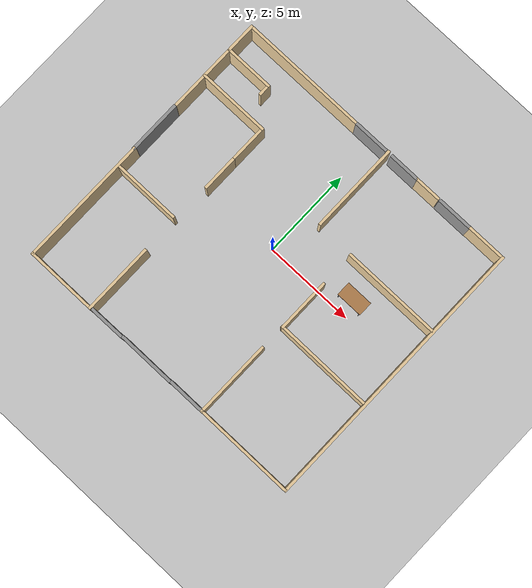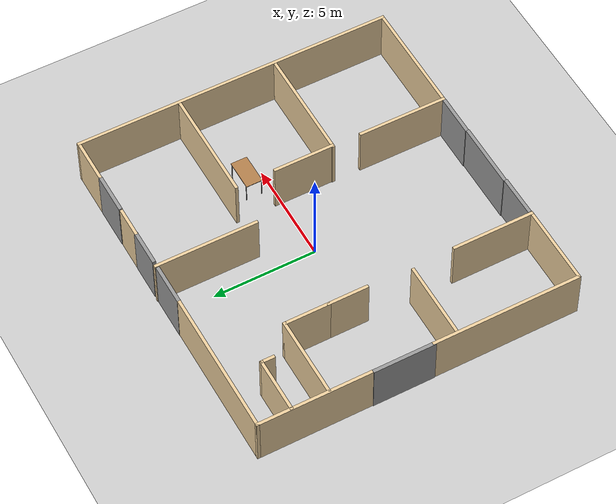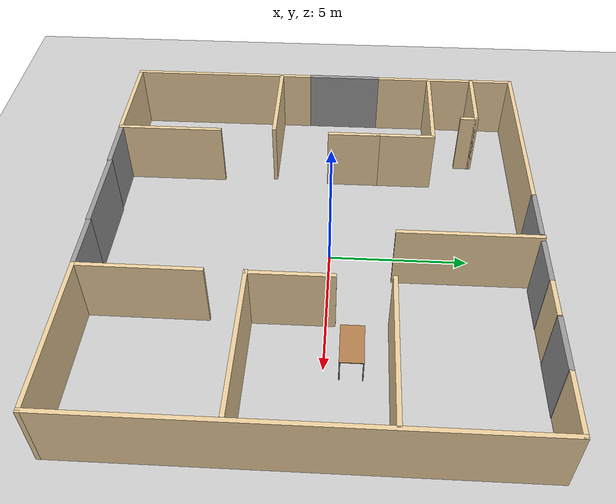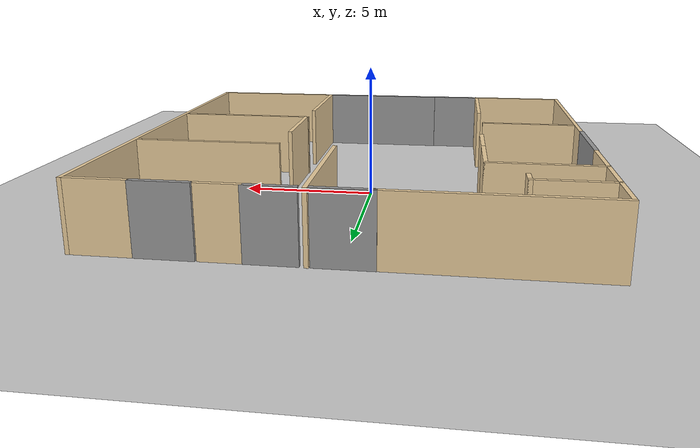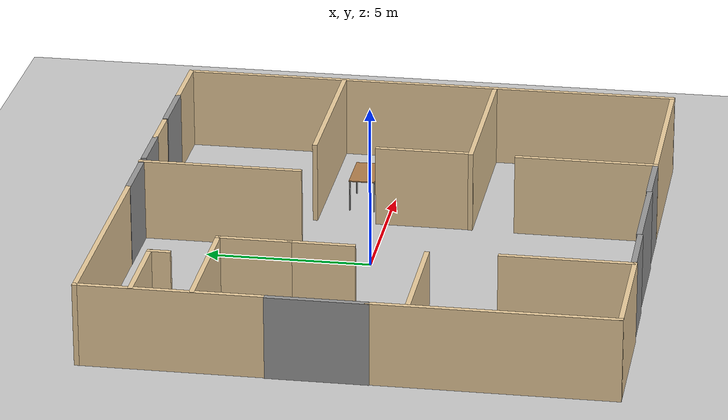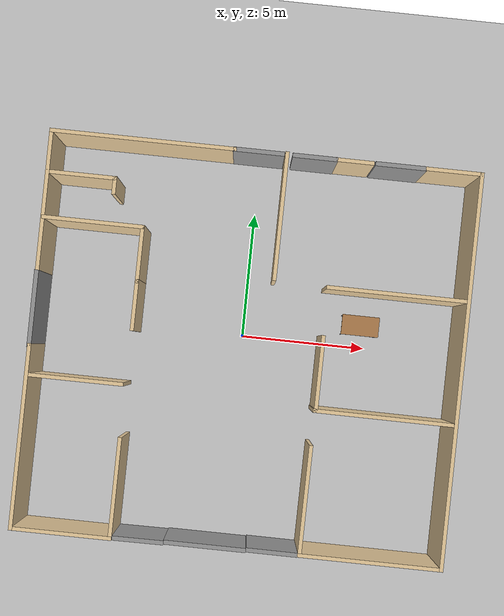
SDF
<sdf version="1.6">
 <world name="default">
  <model name="ground_plane">
   <static>1</static>
   <link name="link">
    <collision name="collision">
     <geometry><plane><normal>0 0 1</normal><size>100 100</size></plane></geometry>
     <surface><friction><ode><mu>100</mu><mu2>50</mu2></ode></friction></surface>
    </collision>
    <visual name="visual">
     <cast_shadows>0</cast_shadows>
     <geometry><plane><normal>0 0 1</normal><size>100 100</size></plane></geometry>
     <material>
      <script><uri>file://media/materials/scripts/gazebo.material</uri><name>Gazebo/Grey</name></script>
     </material>
    </visual>
   </link>
  </model>
  <model name="Building">
   <pose>0.22723 -0.57657 0 0 -0 0</pose>
   <link name="Door_1">
    <collision name="Door_1_Collision">
     <geometry><box><size>2 0.17 2.5</size></box></geometry>
     <pose>0 0 1.25 0 -0 0</pose>
    </collision>
    <visual name="Door_1_Visual">
     <pose>0 0 1.25 0 -0 0</pose>
     <geometry><box><size>2 0.17 2.5</size></box></geometry>
     <material>
      <script><uri>file://media/materials/scripts/gazebo.material</uri><name>Gazebo/Grey</name></script>
     </material>
    </visual>
    <pose>1.77302 -7.63321 0 0 -0 3.1393</pose>
   </link>
   <link name="Door_2">
    <collision name="Door_2_Collision">
     <geometry><box><size>2 0.17 2.5</size></box></geometry>
     <pose>0 0 1.25 0 -0 0</pose>
    </collision>
    <visual name="Door_2_Visual">
     <pose>0 0 1.25 0 -0 0</pose>
     <geometry><box><size>2 0.17 2.5</size></box></geometry>
     <material>
      <script><uri>file://media/materials/scripts/gazebo.material</uri><name>Gazebo/Grey</name></script>
     </material>
    </visual>
    <pose>-3.41797 -7.702 0 0 -0 -3.13381</pose>
   </link>
   <link name="Door_3">
    <collision name="Door_3_Collision">
     <geometry><box><size>1.75 0.17 2.5</size></box></geometry>
     <pose>0 0 1.25 0 -0 0</pose>
    </collision>
    <visual name="Door_3_Visual">
     <pose>0 0 1.25 0 -0 0</pose>
     <geometry><box><size>1.75 0.17 2.5</size></box></geometry>
     <material>
      <script><uri>file://media/materials/scripts/gazebo.material</uri><name>Gazebo/Grey</name></script>
     </material>
    </visual>
    <pose>1.87994 7.70603 0 0 -0 0</pose>
   </link>
   <link name="Wall_12">
    <collision name="Wall_12_Collision">
     <geometry><box><size>7.25 0.15 2.5</size></box></geometry>
     <pose>0 0 1.25 0 -0 0</pose>
    </collision>
    <visual name="Wall_12_Visual">
     <pose>0 0 1.25 0 -0 0</pose>
     <geometry><box><size>7.25 0.15 2.5</size></box></geometry>
     <material>
      <script><uri>file://media/materials/scripts/gazebo.material</uri><name>Gazebo/Grey</name></script>
      <ambient>0.921569 0.807843 0.615686 1</ambient>
     </material>
     <meta><layer>0</layer></meta>
    </visual>
    <pose>-8.3547 -4.19265 0 0 -0 -1.5708</pose>
   </link>
   <link name="Wall_14">
    <collision name="Wall_14_Collision">
     <geometry><box><size>7.25 0.15 2.5</size></box></geometry>
     <pose>0 0 1.25 0 -0 0</pose>
    </collision>
    <visual name="Wall_14_Visual">
     <pose>0 0 1.25 0 -0 0</pose>
     <geometry><box><size>7.25 0.15 2.5</size></box></geometry>
     <material>
      <script><uri>file://media/materials/scripts/gazebo.material</uri><name>Gazebo/Grey</name></script>
      <ambient>0.921569 0.807843 0.615686 1</ambient>
     </material>
     <meta><layer>0</layer></meta>
    </visual>
    <pose>-4.80157 7.70348 0 0 -0 0</pose>
   </link>
   <link name="Wall_16">
    <collision name="Wall_16_Collision">
     <geometry><box><size>5 0.15 2.5</size></box></geometry>
     <pose>0 0 1.25 0 -0 0</pose>
    </collision>
    <visual name="Wall_16_Visual">
     <pose>0 0 1.25 0 -0 0</pose>
     <geometry><box><size>5 0.15 2.5</size></box></geometry>
     <material>
      <script><uri>file://media/materials/scripts/gazebo.material</uri><name>Gazebo/Grey</name></script>
      <ambient>0.921569 0.807843 0.615686 1</ambient>
     </material>
     <meta><layer>0</layer></meta>
    </visual>
    <pose>0.791999 5.31765 0 0 -0 -1.5708</pose>
   </link>
   <link name="Wall_18">
    <collision name="Wall_18_Collision">
     <geometry><box><size>2.75 0.15 2.5</size></box></geometry>
     <pose>0 0 1.25 0 -0 0</pose>
    </collision>
    <visual name="Wall_18_Visual">
     <pose>0 0 1.25 0 -0 0</pose>
     <geometry><box><size>2.75 0.15 2.5</size></box></geometry>
     <material>
      <script><uri>file://media/materials/scripts/gazebo.material</uri><name>Gazebo/Grey</name></script>
      <ambient>0.921569 0.807843 0.615686 1</ambient>
     </material>
     <meta><layer>0</layer></meta>
    </visual>
    <pose>-7.02626 6.10787 0 0 -0 0</pose>
   </link>
   <link name="Wall_19">
    <collision name="Wall_19_Collision">
     <geometry><box><size>0.7 0.15 2.5</size></box></geometry>
     <pose>0 0 1.25 0 -0 0</pose>
    </collision>
    <visual name="Wall_19_Visual">
     <pose>0 0 1.25 0 -0 0</pose>
     <geometry><box><size>0.7 0.15 2.5</size></box></geometry>
     <material>
      <script><uri>file://media/materials/scripts/gazebo.material</uri><name>Gazebo/Grey</name></script>
      <ambient>0.921569 0.807843 0.615686 1</ambient>
     </material>
     <meta><layer>0</layer></meta>
    </visual>
    <pose>-5.72626 5.83287 0 0 -0 -1.5708</pose>
   </link>
   <link name="Wall_23">
    <collision name="Wall_23_Collision">
     <geometry><box><size>4 0.15 2.5</size></box></geometry>
     <pose>0 0 1.25 0 -0 0</pose>
    </collision>
    <visual name="Wall_23_Visual">
     <pose>0 0 1.25 0 -0 0</pose>
     <geometry><box><size>4 0.15 2.5</size></box></geometry>
     <material>
      <script><uri>file://media/materials/scripts/gazebo.material</uri><name>Gazebo/Grey</name></script>
      <ambient>0.921569 0.807843 0.615686 1</ambient>
     </material>
     <meta><layer>0</layer></meta>
    </visual>
    <pose>-6.40126 4.34787 0 0 -0 0</pose>
   </link>
   <link name="Wall_24">
    <collision name="Wall_24_Collision">
     <geometry><box><size>2.25 0.15 2.5</size></box></geometry>
     <pose>0 0 1.25 0 -0 0</pose>
    </collision>
    <visual name="Wall_24_Visual">
     <pose>0 0 1.25 0 -0 0</pose>
     <geometry><box><size>2.25 0.15 2.5</size></box></geometry>
     <material>
      <script><uri>file://media/materials/scripts/gazebo.material</uri><name>Gazebo/Grey</name></script>
      <ambient>0.921569 0.807843 0.615686 1</ambient>
     </material>
     <meta><layer>0</layer></meta>
    </visual>
    <pose>-4.47626 3.29787 0 0 -0 -1.5708</pose>
   </link>
   <link name="Wall_26">
    <collision name="Wall_26_Collision">
     <geometry><box><size>1.5 0.15 2.5</size></box></geometry>
     <pose>0 0 1.25 0 -0 0</pose>
    </collision>
    <visual name="Wall_26_Visual">
     <pose>0 0 1.25 0 -0 0</pose>
     <geometry><box><size>1.5 0.15 2.5</size></box></geometry>
     <material>
      <script><uri>file://media/materials/scripts/gazebo.material</uri><name>Gazebo/Grey</name></script>
      <ambient>0.921569 0.807843 0.615686 1</ambient>
     </material>
     <meta><layer>0</layer></meta>
    </visual>
    <pose>3.42874 7.70787 0 0 -0 0</pose>
   </link>
   <link name="Wall_28">
    <collision name="Wall_28_Collision">
     <geometry><box><size>2.25 0.15 2.5</size></box></geometry>
     <pose>0 0 1.25 0 -0 0</pose>
    </collision>
    <visual name="Wall_28_Visual">
     <pose>0 0 1.25 0 -0 0</pose>
     <geometry><box><size>2.25 0.15 2.5</size></box></geometry>
     <material>
      <script><uri>file://media/materials/scripts/gazebo.material</uri><name>Gazebo/Grey</name></script>
      <ambient>0.921569 0.807843 0.615686 1</ambient>
     </material>
     <meta><layer>0</layer></meta>
    </visual>
    <pose>7.30468 7.71385 0 0 -0 0</pose>
   </link>
   <link name="Wall_29">
    <collision name="Wall_29_Collision">
     <geometry><box><size>15.5 0.15 2.5</size></box></geometry>
     <pose>0 0 1.25 0 -0 0</pose>
    </collision>
    <visual name="Wall_29_Visual">
     <pose>0 0 1.25 0 -0 0</pose>
     <geometry><box><size>15.5 0.15 2.5</size></box></geometry>
     <material>
      <script><uri>file://media/materials/scripts/gazebo.material</uri><name>Gazebo/Grey</name></script>
      <ambient>0.921569 0.807843 0.615686 1</ambient>
     </material>
     <meta><layer>0</layer></meta>
    </visual>
    <pose>8.35468 0.038854 0 0 -0 -1.5708</pose>
   </link>
   <link name="Wall_31">
    <collision name="Wall_31_Collision">
     <geometry><box><size>3.75 0.15 2.5</size></box></geometry>
     <pose>0 0 1.25 0 -0 0</pose>
    </collision>
    <visual name="Wall_31_Visual">
     <pose>0 0 1.25 0 -0 0</pose>
     <geometry><box><size>3.75 0.15 2.5</size></box></geometry>
     <material>
      <script><uri>file://media/materials/scripts/gazebo.material</uri><name>Gazebo/Grey</name></script>
      <ambient>0.921569 0.807843 0.615686 1</ambient>
     </material>
     <meta><layer>0</layer></meta>
    </visual>
    <pose>-6.46277 -1.77396 0 0 -0 0</pose>
   </link>
   <link name="Wall_33">
    <collision name="Wall_33_Collision">
     <geometry><box><size>2 0.15 2.5</size></box></geometry>
     <pose>0 0 1.25 0 -0 0</pose>
    </collision>
    <visual name="Wall_33_Visual">
     <pose>0 0 1.25 0 -0 0</pose>
     <geometry><box><size>2 0.15 2.5</size></box></geometry>
     <material>
      <script><uri>file://media/materials/scripts/gazebo.material</uri><name>Gazebo/Grey</name></script>
      <ambient>0.921569 0.807843 0.615686 1</ambient>
     </material>
     <meta><layer>0</layer></meta>
    </visual>
    <pose>-4.47626 1.32287 0 0 -0 -1.5708</pose>
   </link>
   <link name="Wall_35">
    <collision name="Wall_35_Collision">
     <geometry><box><size>5.5 0.15 2.5</size></box></geometry>
     <pose>0 0 1.25 0 -0 0</pose>
    </collision>
    <visual name="Wall_35_Visual">
     <pose>0 0 1.25 0 -0 0</pose>
     <geometry><box><size>5.5 0.15 2.5</size></box></geometry>
     <material>
      <script><uri>file://media/materials/scripts/gazebo.material</uri><name>Gazebo/Grey</name></script>
      <ambient>0.921569 0.807843 0.615686 1</ambient>
     </material>
     <meta><layer>0</layer></meta>
    </visual>
    <pose>5.58136 2.77318 0 0 -0 0</pose>
   </link>
   <link name="Wall_38">
    <collision name="Wall_38_Collision">
     <geometry><box><size>3 0.15 2.5</size></box></geometry>
     <pose>0 0 1.25 0 -0 0</pose>
    </collision>
    <visual name="Wall_38_Visual">
     <pose>0 0 1.25 0 -0 0</pose>
     <geometry><box><size>3 0.15 2.5</size></box></geometry>
     <material>
      <script><uri>file://media/materials/scripts/gazebo.material</uri><name>Gazebo/Grey</name></script>
      <ambient>0.921569 0.807843 0.615686 1</ambient>
     </material>
     <meta><layer>0</layer></meta>
    </visual>
    <pose>2.90822 -0.593394 0 0 -0 -1.5708</pose>
   </link>
   <link name="Wall_39">
    <collision name="Wall_39_Collision">
     <geometry><box><size>5.46978 0.15 2.5</size></box></geometry>
     <pose>0 0 1.25 0 -0 0</pose>
    </collision>
    <visual name="Wall_39_Visual">
     <pose>0 0 1.25 0 -0 0</pose>
     <geometry><box><size>5.46978 0.15 2.5</size></box></geometry>
     <material>
      <script><uri>file://media/materials/scripts/gazebo.material</uri><name>Gazebo/Grey</name></script>
      <ambient>0.921569 0.807843 0.615686 1</ambient>
     </material>
     <meta><layer>0</layer></meta>
    </visual>
    <pose>5.53786 -2.02643 0 0 -0 -0.00302</pose>
   </link>
   <link name="Wall_42">
    <collision name="Wall_42_Collision">
     <geometry><box><size>5.65695 0.15 2.5</size></box></geometry>
     <pose>0 0 1.25 0 -0 0</pose>
    </collision>
    <visual name="Wall_42_Visual">
     <pose>0 0 1.25 0 -0 0</pose>
     <geometry><box><size>5.65695 0.15 2.5</size></box></geometry>
     <material>
      <script><uri>file://media/materials/scripts/gazebo.material</uri><name>Gazebo/Grey</name></script>
      <ambient>0.921569 0.807843 0.615686 1</ambient>
     </material>
     <meta><layer>0</layer></meta>
    </visual>
    <pose>5.60121 -7.6353 0 0 -0 -0.000306</pose>
   </link>
   <link name="Wall_44">
    <collision name="Wall_44_Collision">
     <geometry><box><size>4.34305 0.15 2.5</size></box></geometry>
     <pose>0 0 1.25 0 -0 0</pose>
    </collision>
    <visual name="Wall_44_Visual">
     <pose>0 0 1.25 0 -0 0</pose>
     <geometry><box><size>4.34305 0.15 2.5</size></box></geometry>
     <material>
      <script><uri>file://media/materials/scripts/gazebo.material</uri><name>Gazebo/Grey</name></script>
      <ambient>0.921569 0.807843 0.615686 1</ambient>
     </material>
     <meta><layer>0</layer></meta>
    </visual>
    <pose>2.85823 -5.53796 0 0 -0 -1.5758</pose>
   </link>
   <link name="Wall_46">
    <collision name="Wall_46_Collision">
     <geometry><box><size>4 0.15 2.5</size></box></geometry>
     <pose>0 0 1.25 0 -0 0</pose>
    </collision>
    <visual name="Wall_46_Visual">
     <pose>0 0 1.25 0 -0 0</pose>
     <geometry><box><size>4 0.15 2.5</size></box></geometry>
     <material>
      <script><uri>file://media/materials/scripts/gazebo.material</uri><name>Gazebo/Grey</name></script>
      <ambient>0.921569 0.807843 0.615686 1</ambient>
     </material>
     <meta><layer>0</layer></meta>
    </visual>
    <pose>-6.42971 -7.74265 0 0 -0 0</pose>
   </link>
   <link name="Wall_48">
    <collision name="Wall_48_Collision">
     <geometry><box><size>4 0.15 2.5</size></box></geometry>
     <pose>0 0 1.25 0 -0 0</pose>
    </collision>
    <visual name="Wall_48_Visual">
     <pose>0 0 1.25 0 -0 0</pose>
     <geometry><box><size>4 0.15 2.5</size></box></geometry>
     <material>
      <script><uri>file://media/materials/scripts/gazebo.material</uri><name>Gazebo/Grey</name></script>
      <ambient>0.921569 0.807843 0.615686 1</ambient>
     </material>
     <meta><layer>0</layer></meta>
    </visual>
    <pose>-4.50471 -5.81765 0 0 -0 1.5708</pose>
   </link>
   <link name="Wall_9">
    <collision name="Wall_9_Collision">
     <geometry><box><size>5.5 0.15 2.5</size></box></geometry>
     <pose>0 0 1.25 0 -0 0</pose>
    </collision>
    <visual name="Wall_9_Visual">
     <pose>0 0 1.25 0 -0 0</pose>
     <geometry><box><size>5.5 0.15 2.5</size></box></geometry>
     <material>
      <script><uri>file://media/materials/scripts/gazebo.material</uri><name>Gazebo/Grey</name></script>
      <ambient>0.921569 0.807843 0.615686 1</ambient>
     </material>
     <meta><layer>0</layer></meta>
    </visual>
    <pose>-8.35157 5.02848 0 0 -0 -1.5708</pose>
   </link>
   <link name="Window_2">
    <collision name="Window_2_Collision">
     <geometry><box><size>3 0.17 2.5</size></box></geometry>
     <pose>0 0 1.25 0 -0 0</pose>
    </collision>
    <visual name="Window_2_Visual">
     <pose>0 0 1.25 0 -0 0</pose>
     <geometry><box><size>3 0.17 2.5</size></box></geometry>
     <material>
      <script><uri>file://media/materials/scripts/gazebo.material</uri><name>Gazebo/Grey</name></script>
     </material>
    </visual>
    <pose>-8.3671 0.789602 0 0 0 -1.5705</pose>
   </link>
   <link name="Window_3">
    <collision name="Window_3_Collision">
     <geometry><box><size>2 0.17 2.5</size></box></geometry>
     <pose>0 0 1.25 0 -0 0</pose>
    </collision>
    <visual name="Window_3_Visual">
     <pose>0 0 1.25 0 -0 0</pose>
     <geometry><box><size>2 0.17 2.5</size></box></geometry>
     <material>
      <script><uri>file://media/materials/scripts/gazebo.material</uri><name>Gazebo/Grey</name></script>
     </material>
    </visual>
    <pose>5.22216 7.70864 0 0 -0 0</pose>
   </link>
   <link name="Window_4">
    <collision name="Window_4_Collision">
     <geometry><box><size>3.2 0.17 2.5</size></box></geometry>
     <pose>0 0 1.25 0 -0 0</pose>
    </collision>
    <visual name="Window_4_Visual">
     <pose>0 0 1.25 0 -0 0</pose>
     <geometry><box><size>3.2 0.17 2.5</size></box></geometry>
     <material>
      <script><uri>file://media/materials/scripts/gazebo.material</uri><name>Gazebo/Grey</name></script>
     </material>
    </visual>
    <pose>-0.82762 -7.66069 0 0 -0 0</pose>
   </link>
   <link name="Window_5">
    <collision name="Window_5_Collision">
     <geometry><box><size>2 0.17 2.5</size></box></geometry>
     <pose>0 0 1.25 0 -0 0</pose>
    </collision>
    <visual name="Window_5_Visual">
     <pose>0 0 1.25 0 -0 0</pose>
     <geometry><box><size>2 0.17 2.5</size></box></geometry>
     <material>
      <script><uri>file://media/materials/scripts/gazebo.material</uri><name>Gazebo/Grey</name></script>
     </material>
    </visual>
    <pose>-0.31136 7.70603 0 0 -0 0</pose>
   </link>
   <static>1</static>
  </model>
  <model name="table_clone_1">
   <static>1</static>
   <link name="link">
    <collision name="surface">
     <pose>0 0 1 0 -0 0</pose>
     <geometry><box><size>1.5 0.8 0.03</size></box></geometry>
     <surface><friction><ode><mu>0.6</mu><mu2>0.6</mu2></ode></friction></surface>
    </collision>
    <visual name="visual1">
     <pose>0 0 1 0 -0 0</pose>
     <geometry><box><size>1.5 0.8 0.03</size></box></geometry>
     <material>
      <script><uri>file://media/materials/scripts/gazebo.material</uri><name>Gazebo/Wood</name></script>
     </material>
    </visual>
    <collision name="front_left_leg">
     <pose>0.68 0.38 0.5 0 -0 0</pose>
     <geometry><cylinder><radius>0.02</radius><length>1</length></cylinder></geometry>
    </collision>
    <visual name="front_left_leg">
     <pose>0.68 0.38 0.5 0 -0 0</pose>
     <geometry><cylinder><radius>0.02</radius><length>1</length></cylinder></geometry>
     <material>
      <script><uri>file://media/materials/scripts/gazebo.material</uri><name>Gazebo/Grey</name></script>
     </material>
    </visual>
    <collision name="front_right_leg">
     <pose>0.68 -0.38 0.5 0 -0 0</pose>
     <geometry><cylinder><radius>0.02</radius><length>1</length></cylinder></geometry>
    </collision>
    <visual name="front_right_leg">
     <pose>0.68 -0.38 0.5 0 -0 0</pose>
     <geometry><cylinder><radius>0.02</radius><length>1</length></cylinder></geometry>
     <material>
      <script><uri>file://media/materials/scripts/gazebo.material</uri><name>Gazebo/Grey</name></script>
     </material>
    </visual>
    <collision name="back_right_leg">
     <pose>-0.68 -0.38 0.5 0 -0 0</pose>
     <geometry><cylinder><radius>0.02</radius><length>1</length></cylinder></geometry>
    </collision>
    <visual name="back_right_leg">
     <pose>-0.68 -0.38 0.5 0 -0 0</pose>
     <geometry><cylinder><radius>0.02</radius><length>1</length></cylinder></geometry>
     <material>
      <script><uri>file://media/materials/scripts/gazebo.material</uri><name>Gazebo/Grey</name></script>
     </material>
    </visual>
    <collision name="back_left_leg">
     <pose>-0.68 0.38 0.5 0 -0 0</pose>
     <geometry><cylinder><radius>0.02</radius><length>1</length></cylinder></geometry>
    </collision>
    <visual name="back_left_leg">
     <pose>-0.68 0.38 0.5 0 -0 0</pose>
     <geometry><cylinder><radius>0.02</radius><length>1</length></cylinder></geometry>
     <material>
      <script><uri>file://media/materials/scripts/gazebo.material</uri><name>Gazebo/Grey</name></script>
     </material>
    </visual>
   </link>
   <pose>4.67887 0.897694 0 0 -0 0</pose>
  </model>
 </world>
</sdf>
